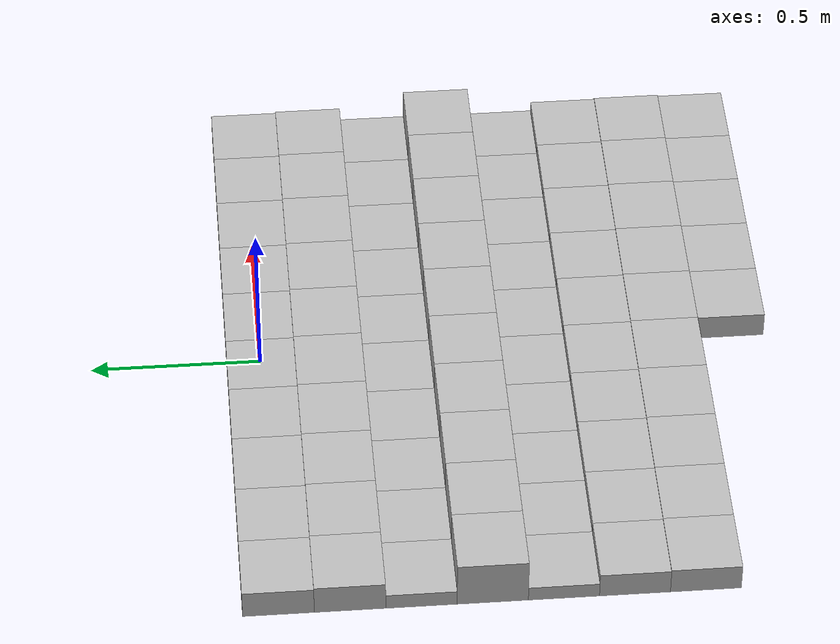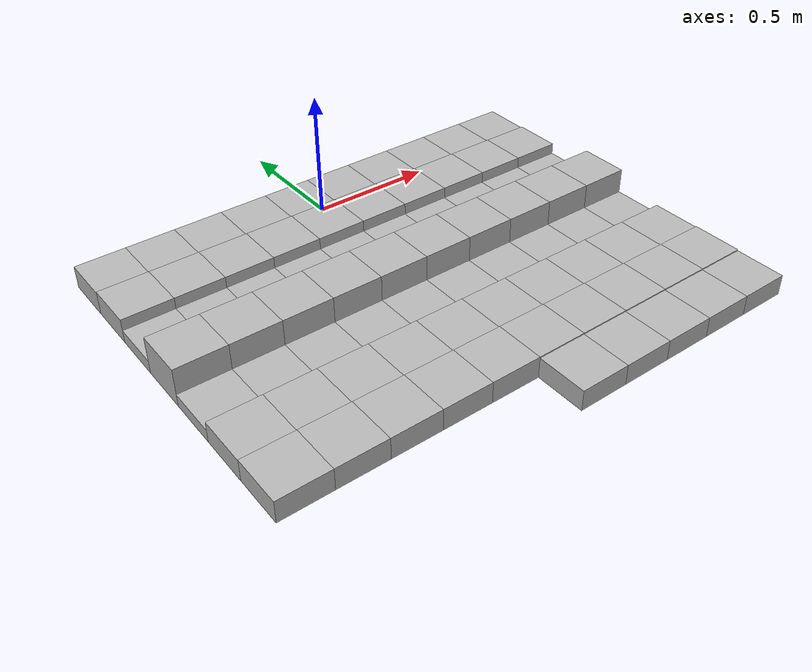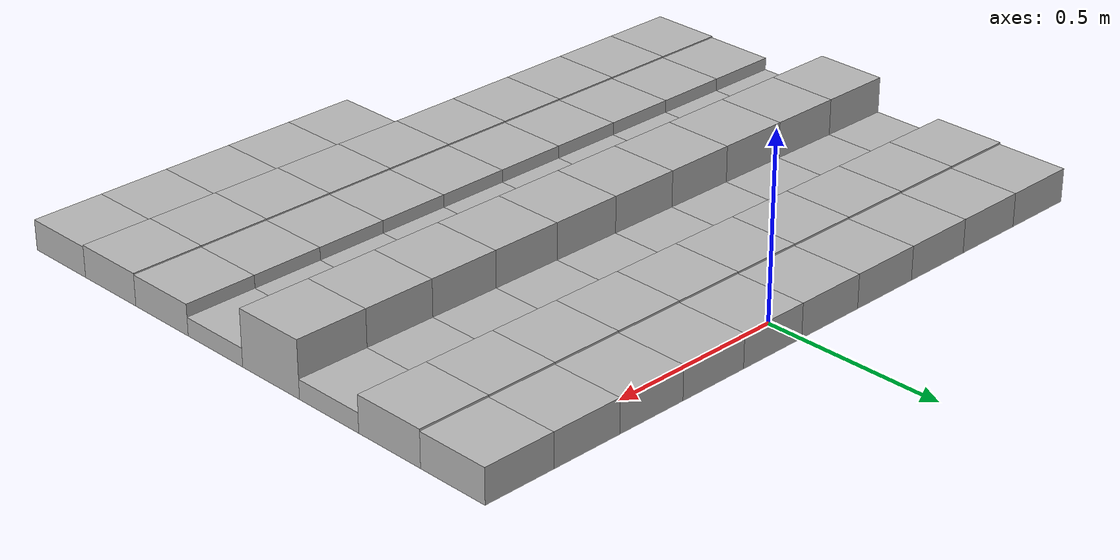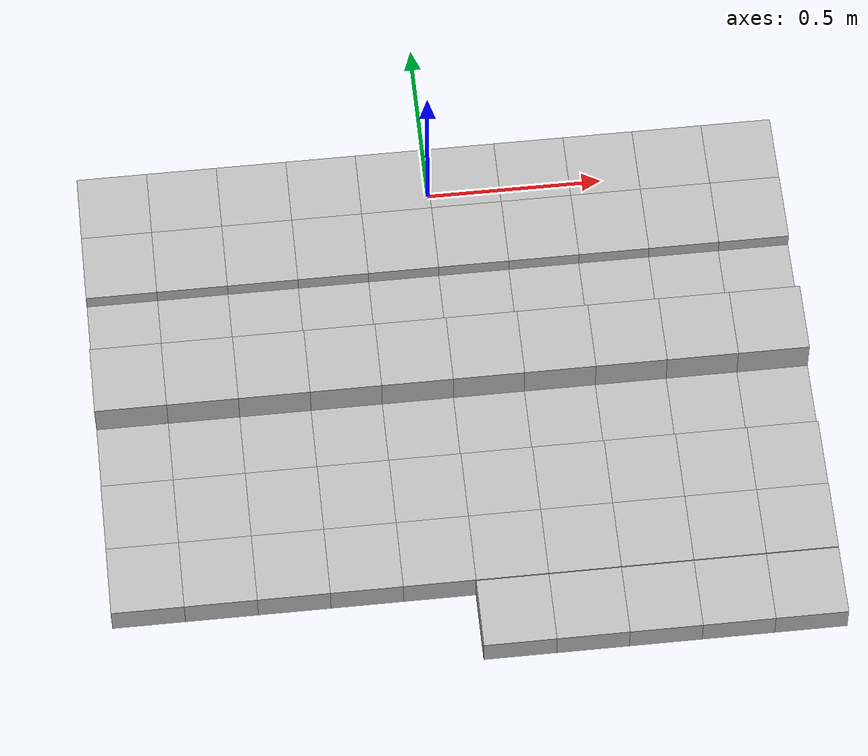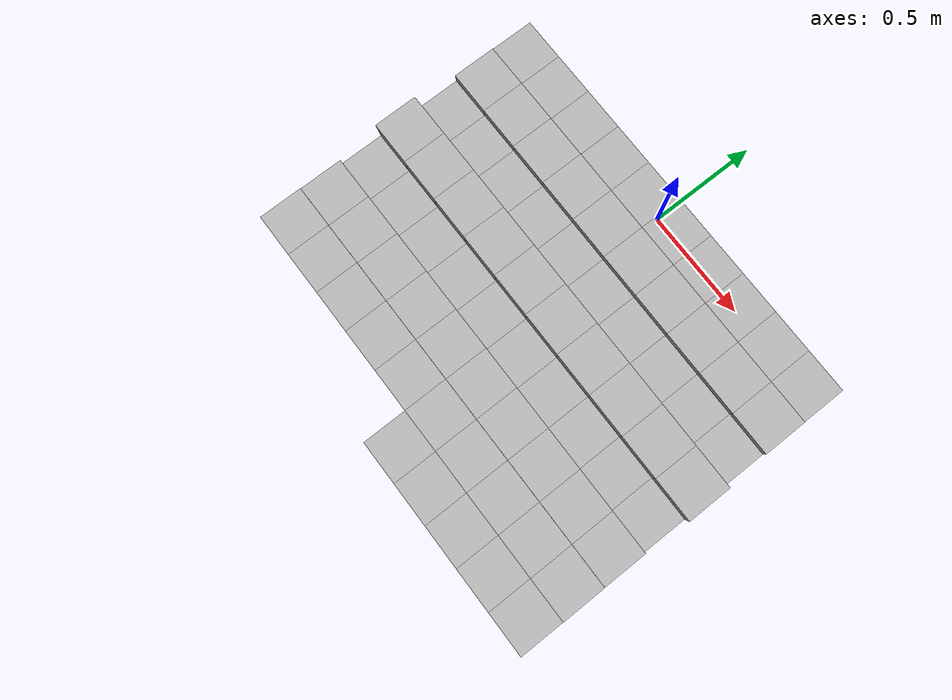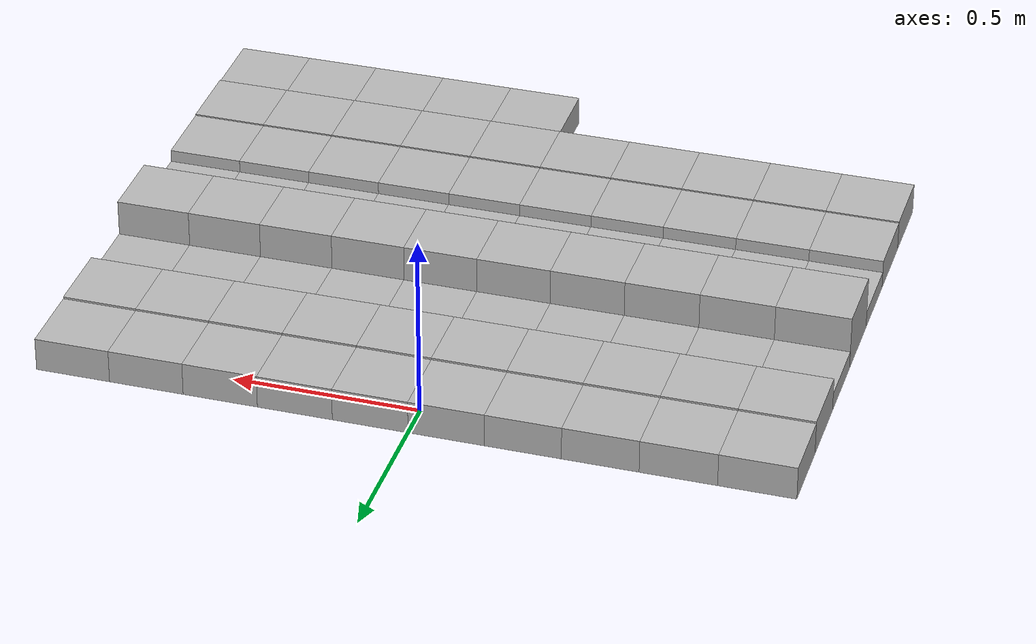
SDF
<sdf version="1.6">
 <model name="Terrain">
  <static>true</static>
  <link name="box_0_0">
   <pose>-0.9 0.0 0.0462607494483 0 0 0</pose>
   <inertial>
    <mass>1.0</mass>
    <inertia><ixx>0.0</ixx><ixy>0.0</ixy><ixz>0.0</ixz><iyy>0.0</iyy><iyz>0.0</iyz><izz>0.0</izz></inertia>
   </inertial>
   <collision name="collision"><geometry><box><size>0.2 0.2 0.0925214988967</size></box></geometry></collision>
   <visual name="visual"><geometry><box><size>0.2 0.2 0.0925214988967</size></box></geometry></visual>
  </link>
  <link name="box_0_1">
   <pose>-0.7 0.0 0.0462607494483 0 0 0</pose>
   <inertial>
    <mass>1.0</mass>
    <inertia><ixx>0.0</ixx><ixy>0.0</ixy><ixz>0.0</ixz><iyy>0.0</iyy><iyz>0.0</iyz><izz>0.0</izz></inertia>
   </inertial>
   <collision name="collision"><geometry><box><size>0.2 0.2 0.0925214988967</size></box></geometry></collision>
   <visual name="visual"><geometry><box><size>0.2 0.2 0.0925214988967</size></box></geometry></visual>
  </link>
  <link name="box_0_2">
   <pose>-0.5 0.0 0.0462607494483 0 0 0</pose>
   <inertial>
    <mass>1.0</mass>
    <inertia><ixx>0.0</ixx><ixy>0.0</ixy><ixz>0.0</ixz><iyy>0.0</iyy><iyz>0.0</iyz><izz>0.0</izz></inertia>
   </inertial>
   <collision name="collision"><geometry><box><size>0.2 0.2 0.0925214988967</size></box></geometry></collision>
   <visual name="visual"><geometry><box><size>0.2 0.2 0.0925214988967</size></box></geometry></visual>
  </link>
  <link name="box_0_3">
   <pose>-0.3 0.0 0.0462607494483 0 0 0</pose>
   <inertial>
    <mass>1.0</mass>
    <inertia><ixx>0.0</ixx><ixy>0.0</ixy><ixz>0.0</ixz><iyy>0.0</iyy><iyz>0.0</iyz><izz>0.0</izz></inertia>
   </inertial>
   <collision name="collision"><geometry><box><size>0.2 0.2 0.0925214988967</size></box></geometry></collision>
   <visual name="visual"><geometry><box><size>0.2 0.2 0.0925214988967</size></box></geometry></visual>
  </link>
  <link name="box_0_4">
   <pose>-0.1 0.0 0.0462607494483 0 0 0</pose>
   <inertial>
    <mass>1.0</mass>
    <inertia><ixx>0.0</ixx><ixy>0.0</ixy><ixz>0.0</ixz><iyy>0.0</iyy><iyz>0.0</iyz><izz>0.0</izz></inertia>
   </inertial>
   <collision name="collision"><geometry><box><size>0.2 0.2 0.0925214988967</size></box></geometry></collision>
   <visual name="visual"><geometry><box><size>0.2 0.2 0.0925214988967</size></box></geometry></visual>
  </link>
  <link name="box_0_5">
   <pose>0.1 0.0 0.0462607494483 0 0 0</pose>
   <inertial>
    <mass>1.0</mass>
    <inertia><ixx>0.0</ixx><ixy>0.0</ixy><ixz>0.0</ixz><iyy>0.0</iyy><iyz>0.0</iyz><izz>0.0</izz></inertia>
   </inertial>
   <collision name="collision"><geometry><box><size>0.2 0.2 0.0925214988967</size></box></geometry></collision>
   <visual name="visual"><geometry><box><size>0.2 0.2 0.0925214988967</size></box></geometry></visual>
  </link>
  <link name="box_0_6">
   <pose>0.3 0.0 0.0462607494483 0 0 0</pose>
   <inertial>
    <mass>1.0</mass>
    <inertia><ixx>0.0</ixx><ixy>0.0</ixy><ixz>0.0</ixz><iyy>0.0</iyy><iyz>0.0</iyz><izz>0.0</izz></inertia>
   </inertial>
   <collision name="collision"><geometry><box><size>0.2 0.2 0.0925214988967</size></box></geometry></collision>
   <visual name="visual"><geometry><box><size>0.2 0.2 0.0925214988967</size></box></geometry></visual>
  </link>
  <link name="box_0_7">
   <pose>0.5 0.0 0.0462607494483 0 0 0</pose>
   <inertial>
    <mass>1.0</mass>
    <inertia><ixx>0.0</ixx><ixy>0.0</ixy><ixz>0.0</ixz><iyy>0.0</iyy><iyz>0.0</iyz><izz>0.0</izz></inertia>
   </inertial>
   <collision name="collision"><geometry><box><size>0.2 0.2 0.0925214988967</size></box></geometry></collision>
   <visual name="visual"><geometry><box><size>0.2 0.2 0.0925214988967</size></box></geometry></visual>
  </link>
  <link name="box_0_8">
   <pose>0.7 0.0 0.0462607494483 0 0 0</pose>
   <inertial>
    <mass>1.0</mass>
    <inertia><ixx>0.0</ixx><ixy>0.0</ixy><ixz>0.0</ixz><iyy>0.0</iyy><iyz>0.0</iyz><izz>0.0</izz></inertia>
   </inertial>
   <collision name="collision"><geometry><box><size>0.2 0.2 0.0925214988967</size></box></geometry></collision>
   <visual name="visual"><geometry><box><size>0.2 0.2 0.0925214988967</size></box></geometry></visual>
  </link>
  <link name="box_0_9">
   <pose>0.9 0.0 0.0462607494483 0 0 0</pose>
   <inertial>
    <mass>1.0</mass>
    <inertia><ixx>0.0</ixx><ixy>0.0</ixy><ixz>0.0</ixz><iyy>0.0</iyy><iyz>0.0</iyz><izz>0.0</izz></inertia>
   </inertial>
   <collision name="collision"><geometry><box><size>0.2 0.2 0.0925214988967</size></box></geometry></collision>
   <visual name="visual"><geometry><box><size>0.2 0.2 0.0925214988967</size></box></geometry></visual>
  </link>
  <link name="box_1_0">
   <pose>-0.9 -0.2 0.0488480303083 0 0 0</pose>
   <inertial>
    <mass>1.0</mass>
    <inertia><ixx>0.0</ixx><ixy>0.0</ixy><ixz>0.0</ixz><iyy>0.0</iyy><iyz>0.0</iyz><izz>0.0</izz></inertia>
   </inertial>
   <collision name="collision"><geometry><box><size>0.2 0.2 0.0976960606167</size></box></geometry></collision>
   <visual name="visual"><geometry><box><size>0.2 0.2 0.0976960606167</size></box></geometry></visual>
  </link>
  <link name="box_1_1">
   <pose>-0.7 -0.2 0.0488480303083 0 0 0</pose>
   <inertial>
    <mass>1.0</mass>
    <inertia><ixx>0.0</ixx><ixy>0.0</ixy><ixz>0.0</ixz><iyy>0.0</iyy><iyz>0.0</iyz><izz>0.0</izz></inertia>
   </inertial>
   <collision name="collision"><geometry><box><size>0.2 0.2 0.0976960606167</size></box></geometry></collision>
   <visual name="visual"><geometry><box><size>0.2 0.2 0.0976960606167</size></box></geometry></visual>
  </link>
  <link name="box_1_2">
   <pose>-0.5 -0.2 0.0488480303083 0 0 0</pose>
   <inertial>
    <mass>1.0</mass>
    <inertia><ixx>0.0</ixx><ixy>0.0</ixy><ixz>0.0</ixz><iyy>0.0</iyy><iyz>0.0</iyz><izz>0.0</izz></inertia>
   </inertial>
   <collision name="collision"><geometry><box><size>0.2 0.2 0.0976960606167</size></box></geometry></collision>
   <visual name="visual"><geometry><box><size>0.2 0.2 0.0976960606167</size></box></geometry></visual>
  </link>
  <link name="box_1_3">
   <pose>-0.3 -0.2 0.0488480303083 0 0 0</pose>
   <inertial>
    <mass>1.0</mass>
    <inertia><ixx>0.0</ixx><ixy>0.0</ixy><ixz>0.0</ixz><iyy>0.0</iyy><iyz>0.0</iyz><izz>0.0</izz></inertia>
   </inertial>
   <collision name="collision"><geometry><box><size>0.2 0.2 0.0976960606167</size></box></geometry></collision>
   <visual name="visual"><geometry><box><size>0.2 0.2 0.0976960606167</size></box></geometry></visual>
  </link>
  <link name="box_1_4">
   <pose>-0.1 -0.2 0.0488480303083 0 0 0</pose>
   <inertial>
    <mass>1.0</mass>
    <inertia><ixx>0.0</ixx><ixy>0.0</ixy><ixz>0.0</ixz><iyy>0.0</iyy><iyz>0.0</iyz><izz>0.0</izz></inertia>
   </inertial>
   <collision name="collision"><geometry><box><size>0.2 0.2 0.0976960606167</size></box></geometry></collision>
   <visual name="visual"><geometry><box><size>0.2 0.2 0.0976960606167</size></box></geometry></visual>
  </link>
  <link name="box_1_5">
   <pose>0.1 -0.2 0.0488480303083 0 0 0</pose>
   <inertial>
    <mass>1.0</mass>
    <inertia><ixx>0.0</ixx><ixy>0.0</ixy><ixz>0.0</ixz><iyy>0.0</iyy><iyz>0.0</iyz><izz>0.0</izz></inertia>
   </inertial>
   <collision name="collision"><geometry><box><size>0.2 0.2 0.0976960606167</size></box></geometry></collision>
   <visual name="visual"><geometry><box><size>0.2 0.2 0.0976960606167</size></box></geometry></visual>
  </link>
  <link name="box_1_6">
   <pose>0.3 -0.2 0.0488480303083 0 0 0</pose>
   <inertial>
    <mass>1.0</mass>
    <inertia><ixx>0.0</ixx><ixy>0.0</ixy><ixz>0.0</ixz><iyy>0.0</iyy><iyz>0.0</iyz><izz>0.0</izz></inertia>
   </inertial>
   <collision name="collision"><geometry><box><size>0.2 0.2 0.0976960606167</size></box></geometry></collision>
   <visual name="visual"><geometry><box><size>0.2 0.2 0.0976960606167</size></box></geometry></visual>
  </link>
  <link name="box_1_7">
   <pose>0.5 -0.2 0.0488480303083 0 0 0</pose>
   <inertial>
    <mass>1.0</mass>
    <inertia><ixx>0.0</ixx><ixy>0.0</ixy><ixz>0.0</ixz><iyy>0.0</iyy><iyz>0.0</iyz><izz>0.0</izz></inertia>
   </inertial>
   <collision name="collision"><geometry><box><size>0.2 0.2 0.0976960606167</size></box></geometry></collision>
   <visual name="visual"><geometry><box><size>0.2 0.2 0.0976960606167</size></box></geometry></visual>
  </link>
  <link name="box_1_8">
   <pose>0.7 -0.2 0.0488480303083 0 0 0</pose>
   <inertial>
    <mass>1.0</mass>
    <inertia><ixx>0.0</ixx><ixy>0.0</ixy><ixz>0.0</ixz><iyy>0.0</iyy><iyz>0.0</iyz><izz>0.0</izz></inertia>
   </inertial>
   <collision name="collision"><geometry><box><size>0.2 0.2 0.0976960606167</size></box></geometry></collision>
   <visual name="visual"><geometry><box><size>0.2 0.2 0.0976960606167</size></box></geometry></visual>
  </link>
  <link name="box_1_9">
   <pose>0.9 -0.2 0.0488480303083 0 0 0</pose>
   <inertial>
    <mass>1.0</mass>
    <inertia><ixx>0.0</ixx><ixy>0.0</ixy><ixz>0.0</ixz><iyy>0.0</iyy><iyz>0.0</iyz><izz>0.0</izz></inertia>
   </inertial>
   <collision name="collision"><geometry><box><size>0.2 0.2 0.0976960606167</size></box></geometry></collision>
   <visual name="visual"><geometry><box><size>0.2 0.2 0.0976960606167</size></box></geometry></visual>
  </link>
  <link name="box_2_0">
   <pose>-0.9 -0.4 0.0259104339983 0 0 0</pose>
   <inertial>
    <mass>1.0</mass>
    <inertia><ixx>0.0</ixx><ixy>0.0</ixy><ixz>0.0</ixz><iyy>0.0</iyy><iyz>0.0</iyz><izz>0.0</izz></inertia>
   </inertial>
   <collision name="collision"><geometry><box><size>0.2 0.2 0.0518208679965</size></box></geometry></collision>
   <visual name="visual"><geometry><box><size>0.2 0.2 0.0518208679965</size></box></geometry></visual>
  </link>
  <link name="box_2_1">
   <pose>-0.7 -0.4 0.0259104339983 0 0 0</pose>
   <inertial>
    <mass>1.0</mass>
    <inertia><ixx>0.0</ixx><ixy>0.0</ixy><ixz>0.0</ixz><iyy>0.0</iyy><iyz>0.0</iyz><izz>0.0</izz></inertia>
   </inertial>
   <collision name="collision"><geometry><box><size>0.2 0.2 0.0518208679965</size></box></geometry></collision>
   <visual name="visual"><geometry><box><size>0.2 0.2 0.0518208679965</size></box></geometry></visual>
  </link>
  <link name="box_2_2">
   <pose>-0.5 -0.4 0.0259104339983 0 0 0</pose>
   <inertial>
    <mass>1.0</mass>
    <inertia><ixx>0.0</ixx><ixy>0.0</ixy><ixz>0.0</ixz><iyy>0.0</iyy><iyz>0.0</iyz><izz>0.0</izz></inertia>
   </inertial>
   <collision name="collision"><geometry><box><size>0.2 0.2 0.0518208679965</size></box></geometry></collision>
   <visual name="visual"><geometry><box><size>0.2 0.2 0.0518208679965</size></box></geometry></visual>
  </link>
  <link name="box_2_3">
   <pose>-0.3 -0.4 0.0259104339983 0 0 0</pose>
   <inertial>
    <mass>1.0</mass>
    <inertia><ixx>0.0</ixx><ixy>0.0</ixy><ixz>0.0</ixz><iyy>0.0</iyy><iyz>0.0</iyz><izz>0.0</izz></inertia>
   </inertial>
   <collision name="collision"><geometry><box><size>0.2 0.2 0.0518208679965</size></box></geometry></collision>
   <visual name="visual"><geometry><box><size>0.2 0.2 0.0518208679965</size></box></geometry></visual>
  </link>
  <link name="box_2_4">
   <pose>-0.1 -0.4 0.0259104339983 0 0 0</pose>
   <inertial>
    <mass>1.0</mass>
    <inertia><ixx>0.0</ixx><ixy>0.0</ixy><ixz>0.0</ixz><iyy>0.0</iyy><iyz>0.0</iyz><izz>0.0</izz></inertia>
   </inertial>
   <collision name="collision"><geometry><box><size>0.2 0.2 0.0518208679965</size></box></geometry></collision>
   <visual name="visual"><geometry><box><size>0.2 0.2 0.0518208679965</size></box></geometry></visual>
  </link>
  <link name="box_2_5">
   <pose>0.1 -0.4 0.0259104339983 0 0 0</pose>
   <inertial>
    <mass>1.0</mass>
    <inertia><ixx>0.0</ixx><ixy>0.0</ixy><ixz>0.0</ixz><iyy>0.0</iyy><iyz>0.0</iyz><izz>0.0</izz></inertia>
   </inertial>
   <collision name="collision"><geometry><box><size>0.2 0.2 0.0518208679965</size></box></geometry></collision>
   <visual name="visual"><geometry><box><size>0.2 0.2 0.0518208679965</size></box></geometry></visual>
  </link>
  <link name="box_2_6">
   <pose>0.3 -0.4 0.0259104339983 0 0 0</pose>
   <inertial>
    <mass>1.0</mass>
    <inertia><ixx>0.0</ixx><ixy>0.0</ixy><ixz>0.0</ixz><iyy>0.0</iyy><iyz>0.0</iyz><izz>0.0</izz></inertia>
   </inertial>
   <collision name="collision"><geometry><box><size>0.2 0.2 0.0518208679965</size></box></geometry></collision>
   <visual name="visual"><geometry><box><size>0.2 0.2 0.0518208679965</size></box></geometry></visual>
  </link>
  <link name="box_2_7">
   <pose>0.5 -0.4 0.0259104339983 0 0 0</pose>
   <inertial>
    <mass>1.0</mass>
    <inertia><ixx>0.0</ixx><ixy>0.0</ixy><ixz>0.0</ixz><iyy>0.0</iyy><iyz>0.0</iyz><izz>0.0</izz></inertia>
   </inertial>
   <collision name="collision"><geometry><box><size>0.2 0.2 0.0518208679965</size></box></geometry></collision>
   <visual name="visual"><geometry><box><size>0.2 0.2 0.0518208679965</size></box></geometry></visual>
  </link>
  <link name="box_2_8">
   <pose>0.7 -0.4 0.0259104339983 0 0 0</pose>
   <inertial>
    <mass>1.0</mass>
    <inertia><ixx>0.0</ixx><ixy>0.0</ixy><ixz>0.0</ixz><iyy>0.0</iyy><iyz>0.0</iyz><izz>0.0</izz></inertia>
   </inertial>
   <collision name="collision"><geometry><box><size>0.2 0.2 0.0518208679965</size></box></geometry></collision>
   <visual name="visual"><geometry><box><size>0.2 0.2 0.0518208679965</size></box></geometry></visual>
  </link>
  <link name="box_2_9">
   <pose>0.9 -0.4 0.0259104339983 0 0 0</pose>
   <inertial>
    <mass>1.0</mass>
    <inertia><ixx>0.0</ixx><ixy>0.0</ixy><ixz>0.0</ixz><iyy>0.0</iyy><iyz>0.0</iyz><izz>0.0</izz></inertia>
   </inertial>
   <collision name="collision"><geometry><box><size>0.2 0.2 0.0518208679965</size></box></geometry></collision>
   <visual name="visual"><geometry><box><size>0.2 0.2 0.0518208679965</size></box></geometry></visual>
  </link>
  <link name="box_3_0">
   <pose>-0.9 -0.6 0.0759818154219 0 0 0</pose>
   <inertial>
    <mass>1.0</mass>
    <inertia><ixx>0.0</ixx><ixy>0.0</ixy><ixz>0.0</ixz><iyy>0.0</iyy><iyz>0.0</iyz><izz>0.0</izz></inertia>
   </inertial>
   <collision name="collision"><geometry><box><size>0.2 0.2 0.151963630844</size></box></geometry></collision>
   <visual name="visual"><geometry><box><size>0.2 0.2 0.151963630844</size></box></geometry></visual>
  </link>
  <link name="box_3_1">
   <pose>-0.7 -0.6 0.0759818154219 0 0 0</pose>
   <inertial>
    <mass>1.0</mass>
    <inertia><ixx>0.0</ixx><ixy>0.0</ixy><ixz>0.0</ixz><iyy>0.0</iyy><iyz>0.0</iyz><izz>0.0</izz></inertia>
   </inertial>
   <collision name="collision"><geometry><box><size>0.2 0.2 0.151963630844</size></box></geometry></collision>
   <visual name="visual"><geometry><box><size>0.2 0.2 0.151963630844</size></box></geometry></visual>
  </link>
  <link name="box_3_2">
   <pose>-0.5 -0.6 0.0759818154219 0 0 0</pose>
   <inertial>
    <mass>1.0</mass>
    <inertia><ixx>0.0</ixx><ixy>0.0</ixy><ixz>0.0</ixz><iyy>0.0</iyy><iyz>0.0</iyz><izz>0.0</izz></inertia>
   </inertial>
   <collision name="collision"><geometry><box><size>0.2 0.2 0.151963630844</size></box></geometry></collision>
   <visual name="visual"><geometry><box><size>0.2 0.2 0.151963630844</size></box></geometry></visual>
  </link>
  <link name="box_3_3">
   <pose>-0.3 -0.6 0.0759818154219 0 0 0</pose>
   <inertial>
    <mass>1.0</mass>
    <inertia><ixx>0.0</ixx><ixy>0.0</ixy><ixz>0.0</ixz><iyy>0.0</iyy><iyz>0.0</iyz><izz>0.0</izz></inertia>
   </inertial>
   <collision name="collision"><geometry><box><size>0.2 0.2 0.151963630844</size></box></geometry></collision>
   <visual name="visual"><geometry><box><size>0.2 0.2 0.151963630844</size></box></geometry></visual>
  </link>
  <link name="box_3_4">
   <pose>-0.1 -0.6 0.0759818154219 0 0 0</pose>
   <inertial>
    <mass>1.0</mass>
    <inertia><ixx>0.0</ixx><ixy>0.0</ixy><ixz>0.0</ixz><iyy>0.0</iyy><iyz>0.0</iyz><izz>0.0</izz></inertia>
   </inertial>
   <collision name="collision"><geometry><box><size>0.2 0.2 0.151963630844</size></box></geometry></collision>
   <visual name="visual"><geometry><box><size>0.2 0.2 0.151963630844</size></box></geometry></visual>
  </link>
  <link name="box_3_5">
   <pose>0.1 -0.6 0.0759818154219 0 0 0</pose>
   <inertial>
    <mass>1.0</mass>
    <inertia><ixx>0.0</ixx><ixy>0.0</ixy><ixz>0.0</ixz><iyy>0.0</iyy><iyz>0.0</iyz><izz>0.0</izz></inertia>
   </inertial>
   <collision name="collision"><geometry><box><size>0.2 0.2 0.151963630844</size></box></geometry></collision>
   <visual name="visual"><geometry><box><size>0.2 0.2 0.151963630844</size></box></geometry></visual>
  </link>
  <link name="box_3_6">
   <pose>0.3 -0.6 0.0759818154219 0 0 0</pose>
   <inertial>
    <mass>1.0</mass>
    <inertia><ixx>0.0</ixx><ixy>0.0</ixy><ixz>0.0</ixz><iyy>0.0</iyy><iyz>0.0</iyz><izz>0.0</izz></inertia>
   </inertial>
   <collision name="collision"><geometry><box><size>0.2 0.2 0.151963630844</size></box></geometry></collision>
   <visual name="visual"><geometry><box><size>0.2 0.2 0.151963630844</size></box></geometry></visual>
  </link>
  <link name="box_3_7">
   <pose>0.5 -0.6 0.0759818154219 0 0 0</pose>
   <inertial>
    <mass>1.0</mass>
    <inertia><ixx>0.0</ixx><ixy>0.0</ixy><ixz>0.0</ixz><iyy>0.0</iyy><iyz>0.0</iyz><izz>0.0</izz></inertia>
   </inertial>
   <collision name="collision"><geometry><box><size>0.2 0.2 0.151963630844</size></box></geometry></collision>
   <visual name="visual"><geometry><box><size>0.2 0.2 0.151963630844</size></box></geometry></visual>
  </link>
  <link name="box_3_8">
   <pose>0.7 -0.6 0.0759818154219 0 0 0</pose>
   <inertial>
    <mass>1.0</mass>
    <inertia><ixx>0.0</ixx><ixy>0.0</ixy><ixz>0.0</ixz><iyy>0.0</iyy><iyz>0.0</iyz><izz>0.0</izz></inertia>
   </inertial>
   <collision name="collision"><geometry><box><size>0.2 0.2 0.151963630844</size></box></geometry></collision>
   <visual name="visual"><geometry><box><size>0.2 0.2 0.151963630844</size></box></geometry></visual>
  </link>
  <link name="box_3_9">
   <pose>0.9 -0.6 0.0759818154219 0 0 0</pose>
   <inertial>
    <mass>1.0</mass>
    <inertia><ixx>0.0</ixx><ixy>0.0</ixy><ixz>0.0</ixz><iyy>0.0</iyy><iyz>0.0</iyz><izz>0.0</izz></inertia>
   </inertial>
   <collision name="collision"><geometry><box><size>0.2 0.2 0.151963630844</size></box></geometry></collision>
   <visual name="visual"><geometry><box><size>0.2 0.2 0.151963630844</size></box></geometry></visual>
  </link>
  <link name="box_4_0">
   <pose>-0.9 -0.8 0.0246215216488 0 0 0</pose>
   <inertial>
    <mass>1.0</mass>
    <inertia><ixx>0.0</ixx><ixy>0.0</ixy><ixz>0.0</ixz><iyy>0.0</iyy><iyz>0.0</iyz><izz>0.0</izz></inertia>
   </inertial>
   <collision name="collision"><geometry><box><size>0.2 0.2 0.0492430432977</size></box></geometry></collision>
   <visual name="visual"><geometry><box><size>0.2 0.2 0.0492430432977</size></box></geometry></visual>
  </link>
  <link name="box_4_1">
   <pose>-0.7 -0.8 0.0246215216488 0 0 0</pose>
   <inertial>
    <mass>1.0</mass>
    <inertia><ixx>0.0</ixx><ixy>0.0</ixy><ixz>0.0</ixz><iyy>0.0</iyy><iyz>0.0</iyz><izz>0.0</izz></inertia>
   </inertial>
   <collision name="collision"><geometry><box><size>0.2 0.2 0.0492430432977</size></box></geometry></collision>
   <visual name="visual"><geometry><box><size>0.2 0.2 0.0492430432977</size></box></geometry></visual>
  </link>
  <link name="box_4_2">
   <pose>-0.5 -0.8 0.0246215216488 0 0 0</pose>
   <inertial>
    <mass>1.0</mass>
    <inertia><ixx>0.0</ixx><ixy>0.0</ixy><ixz>0.0</ixz><iyy>0.0</iyy><iyz>0.0</iyz><izz>0.0</izz></inertia>
   </inertial>
   <collision name="collision"><geometry><box><size>0.2 0.2 0.0492430432977</size></box></geometry></collision>
   <visual name="visual"><geometry><box><size>0.2 0.2 0.0492430432977</size></box></geometry></visual>
  </link>
  <link name="box_4_3">
   <pose>-0.3 -0.8 0.0246215216488 0 0 0</pose>
   <inertial>
    <mass>1.0</mass>
    <inertia><ixx>0.0</ixx><ixy>0.0</ixy><ixz>0.0</ixz><iyy>0.0</iyy><iyz>0.0</iyz><izz>0.0</izz></inertia>
   </inertial>
   <collision name="collision"><geometry><box><size>0.2 0.2 0.0492430432977</size></box></geometry></collision>
   <visual name="visual"><geometry><box><size>0.2 0.2 0.0492430432977</size></box></geometry></visual>
  </link>
  <link name="box_4_4">
   <pose>-0.1 -0.8 0.0246215216488 0 0 0</pose>
   <inertial>
    <mass>1.0</mass>
    <inertia><ixx>0.0</ixx><ixy>0.0</ixy><ixz>0.0</ixz><iyy>0.0</iyy><iyz>0.0</iyz><izz>0.0</izz></inertia>
   </inertial>
   <collision name="collision"><geometry><box><size>0.2 0.2 0.0492430432977</size></box></geometry></collision>
   <visual name="visual"><geometry><box><size>0.2 0.2 0.0492430432977</size></box></geometry></visual>
  </link>
  <link name="box_4_5">
   <pose>0.1 -0.8 0.0246215216488 0 0 0</pose>
   <inertial>
    <mass>1.0</mass>
    <inertia><ixx>0.0</ixx><ixy>0.0</ixy><ixz>0.0</ixz><iyy>0.0</iyy><iyz>0.0</iyz><izz>0.0</izz></inertia>
   </inertial>
   <collision name="collision"><geometry><box><size>0.2 0.2 0.0492430432977</size></box></geometry></collision>
   <visual name="visual"><geometry><box><size>0.2 0.2 0.0492430432977</size></box></geometry></visual>
  </link>
  <link name="box_4_6">
   <pose>0.3 -0.8 0.0246215216488 0 0 0</pose>
   <inertial>
    <mass>1.0</mass>
    <inertia><ixx>0.0</ixx><ixy>0.0</ixy><ixz>0.0</ixz><iyy>0.0</iyy><iyz>0.0</iyz><izz>0.0</izz></inertia>
   </inertial>
   <collision name="collision"><geometry><box><size>0.2 0.2 0.0492430432977</size></box></geometry></collision>
   <visual name="visual"><geometry><box><size>0.2 0.2 0.0492430432977</size></box></geometry></visual>
  </link>
  <link name="box_4_7">
   <pose>0.5 -0.8 0.0246215216488 0 0 0</pose>
   <inertial>
    <mass>1.0</mass>
    <inertia><ixx>0.0</ixx><ixy>0.0</ixy><ixz>0.0</ixz><iyy>0.0</iyy><iyz>0.0</iyz><izz>0.0</izz></inertia>
   </inertial>
   <collision name="collision"><geometry><box><size>0.2 0.2 0.0492430432977</size></box></geometry></collision>
   <visual name="visual"><geometry><box><size>0.2 0.2 0.0492430432977</size></box></geometry></visual>
  </link>
  <link name="box_4_8">
   <pose>0.7 -0.8 0.0246215216488 0 0 0</pose>
   <inertial>
    <mass>1.0</mass>
    <inertia><ixx>0.0</ixx><ixy>0.0</ixy><ixz>0.0</ixz><iyy>0.0</iyy><iyz>0.0</iyz><izz>0.0</izz></inertia>
   </inertial>
   <collision name="collision"><geometry><box><size>0.2 0.2 0.0492430432977</size></box></geometry></collision>
   <visual name="visual"><geometry><box><size>0.2 0.2 0.0492430432977</size></box></geometry></visual>
  </link>
  <link name="box_4_9">
   <pose>0.9 -0.8 0.0246215216488 0 0 0</pose>
   <inertial>
    <mass>1.0</mass>
    <inertia><ixx>0.0</ixx><ixy>0.0</ixy><ixz>0.0</ixz><iyy>0.0</iyy><iyz>0.0</iyz><izz>0.0</izz></inertia>
   </inertial>
   <collision name="collision"><geometry><box><size>0.2 0.2 0.0492430432977</size></box></geometry></collision>
   <visual name="visual"><geometry><box><size>0.2 0.2 0.0492430432977</size></box></geometry></visual>
  </link>
  <link name="box_5_0">
   <pose>-0.9 -1.0 0.0418276035289 0 0 0</pose>
   <inertial>
    <mass>1.0</mass>
    <inertia><ixx>0.0</ixx><ixy>0.0</ixy><ixz>0.0</ixz><iyy>0.0</iyy><iyz>0.0</iyz><izz>0.0</izz></inertia>
   </inertial>
   <collision name="collision"><geometry><box><size>0.2 0.2 0.0836552070578</size></box></geometry></collision>
   <visual name="visual"><geometry><box><size>0.2 0.2 0.0836552070578</size></box></geometry></visual>
  </link>
  <link name="box_5_1">
   <pose>-0.7 -1.0 0.0418276035289 0 0 0</pose>
   <inertial>
    <mass>1.0</mass>
    <inertia><ixx>0.0</ixx><ixy>0.0</ixy><ixz>0.0</ixz><iyy>0.0</iyy><iyz>0.0</iyz><izz>0.0</izz></inertia>
   </inertial>
   <collision name="collision"><geometry><box><size>0.2 0.2 0.0836552070578</size></box></geometry></collision>
   <visual name="visual"><geometry><box><size>0.2 0.2 0.0836552070578</size></box></geometry></visual>
  </link>
  <link name="box_5_2">
   <pose>-0.5 -1.0 0.0418276035289 0 0 0</pose>
   <inertial>
    <mass>1.0</mass>
    <inertia><ixx>0.0</ixx><ixy>0.0</ixy><ixz>0.0</ixz><iyy>0.0</iyy><iyz>0.0</iyz><izz>0.0</izz></inertia>
   </inertial>
   <collision name="collision"><geometry><box><size>0.2 0.2 0.0836552070578</size></box></geometry></collision>
   <visual name="visual"><geometry><box><size>0.2 0.2 0.0836552070578</size></box></geometry></visual>
  </link>
  <link name="box_5_3">
   <pose>-0.3 -1.0 0.0418276035289 0 0 0</pose>
   <inertial>
    <mass>1.0</mass>
    <inertia><ixx>0.0</ixx><ixy>0.0</ixy><ixz>0.0</ixz><iyy>0.0</iyy><iyz>0.0</iyz><izz>0.0</izz></inertia>
   </inertial>
   <collision name="collision"><geometry><box><size>0.2 0.2 0.0836552070578</size></box></geometry></collision>
   <visual name="visual"><geometry><box><size>0.2 0.2 0.0836552070578</size></box></geometry></visual>
  </link>
  <link name="box_5_4">
   <pose>-0.1 -1.0 0.0418276035289 0 0 0</pose>
   <inertial>
    <mass>1.0</mass>
    <inertia><ixx>0.0</ixx><ixy>0.0</ixy><ixz>0.0</ixz><iyy>0.0</iyy><iyz>0.0</iyz><izz>0.0</izz></inertia>
   </inertial>
   <collision name="collision"><geometry><box><size>0.2 0.2 0.0836552070578</size></box></geometry></collision>
   <visual name="visual"><geometry><box><size>0.2 0.2 0.0836552070578</size></box></geometry></visual>
  </link>
  <link name="box_5_5">
   <pose>0.1 -1.0 0.0418276035289 0 0 0</pose>
   <inertial>
    <mass>1.0</mass>
    <inertia><ixx>0.0</ixx><ixy>0.0</ixy><ixz>0.0</ixz><iyy>0.0</iyy><iyz>0.0</iyz><izz>0.0</izz></inertia>
   </inertial>
   <collision name="collision"><geometry><box><size>0.2 0.2 0.0836552070578</size></box></geometry></collision>
   <visual name="visual"><geometry><box><size>0.2 0.2 0.0836552070578</size></box></geometry></visual>
  </link>
  <link name="box_5_6">
   <pose>0.3 -1.0 0.0418276035289 0 0 0</pose>
   <inertial>
    <mass>1.0</mass>
    <inertia><ixx>0.0</ixx><ixy>0.0</ixy><ixz>0.0</ixz><iyy>0.0</iyy><iyz>0.0</iyz><izz>0.0</izz></inertia>
   </inertial>
   <collision name="collision"><geometry><box><size>0.2 0.2 0.0836552070578</size></box></geometry></collision>
   <visual name="visual"><geometry><box><size>0.2 0.2 0.0836552070578</size></box></geometry></visual>
  </link>
  <link name="box_5_7">
   <pose>0.5 -1.0 0.0418276035289 0 0 0</pose>
   <inertial>
    <mass>1.0</mass>
    <inertia><ixx>0.0</ixx><ixy>0.0</ixy><ixz>0.0</ixz><iyy>0.0</iyy><iyz>0.0</iyz><izz>0.0</izz></inertia>
   </inertial>
   <collision name="collision"><geometry><box><size>0.2 0.2 0.0836552070578</size></box></geometry></collision>
   <visual name="visual"><geometry><box><size>0.2 0.2 0.0836552070578</size></box></geometry></visual>
  </link>
  <link name="box_5_8">
   <pose>0.7 -1.0 0.0418276035289 0 0 0</pose>
   <inertial>
    <mass>1.0</mass>
    <inertia><ixx>0.0</ixx><ixy>0.0</ixy><ixz>0.0</ixz><iyy>0.0</iyy><iyz>0.0</iyz><izz>0.0</izz></inertia>
   </inertial>
   <collision name="collision"><geometry><box><size>0.2 0.2 0.0836552070578</size></box></geometry></collision>
   <visual name="visual"><geometry><box><size>0.2 0.2 0.0836552070578</size></box></geometry></visual>
  </link>
  <link name="box_5_9">
   <pose>0.9 -1.0 0.0418276035289 0 0 0</pose>
   <inertial>
    <mass>1.0</mass>
    <inertia><ixx>0.0</ixx><ixy>0.0</ixy><ixz>0.0</ixz><iyy>0.0</iyy><iyz>0.0</iyz><izz>0.0</izz></inertia>
   </inertial>
   <collision name="collision"><geometry><box><size>0.2 0.2 0.0836552070578</size></box></geometry></collision>
   <visual name="visual"><geometry><box><size>0.2 0.2 0.0836552070578</size></box></geometry></visual>
  </link>
  <link name="box_6_0">
   <pose>-0.9 -1.2 0.0436936428883 0 0 0</pose>
   <inertial>
    <mass>1.0</mass>
    <inertia><ixx>0.0</ixx><ixy>0.0</ixy><ixz>0.0</ixz><iyy>0.0</iyy><iyz>0.0</iyz><izz>0.0</izz></inertia>
   </inertial>
   <collision name="collision"><geometry><box><size>0.2 0.2 0.0873872857766</size></box></geometry></collision>
   <visual name="visual"><geometry><box><size>0.2 0.2 0.0873872857766</size></box></geometry></visual>
  </link>
  <link name="box_6_1">
   <pose>-0.7 -1.2 0.0436936428883 0 0 0</pose>
   <inertial>
    <mass>1.0</mass>
    <inertia><ixx>0.0</ixx><ixy>0.0</ixy><ixz>0.0</ixz><iyy>0.0</iyy><iyz>0.0</iyz><izz>0.0</izz></inertia>
   </inertial>
   <collision name="collision"><geometry><box><size>0.2 0.2 0.0873872857766</size></box></geometry></collision>
   <visual name="visual"><geometry><box><size>0.2 0.2 0.0873872857766</size></box></geometry></visual>
  </link>
  <link name="box_6_2">
   <pose>-0.5 -1.2 0.0436936428883 0 0 0</pose>
   <inertial>
    <mass>1.0</mass>
    <inertia><ixx>0.0</ixx><ixy>0.0</ixy><ixz>0.0</ixz><iyy>0.0</iyy><iyz>0.0</iyz><izz>0.0</izz></inertia>
   </inertial>
   <collision name="collision"><geometry><box><size>0.2 0.2 0.0873872857766</size></box></geometry></collision>
   <visual name="visual"><geometry><box><size>0.2 0.2 0.0873872857766</size></box></geometry></visual>
  </link>
  <link name="box_6_3">
   <pose>-0.3 -1.2 0.0436936428883 0 0 0</pose>
   <inertial>
    <mass>1.0</mass>
    <inertia><ixx>0.0</ixx><ixy>0.0</ixy><ixz>0.0</ixz><iyy>0.0</iyy><iyz>0.0</iyz><izz>0.0</izz></inertia>
   </inertial>
   <collision name="collision"><geometry><box><size>0.2 0.2 0.0873872857766</size></box></geometry></collision>
   <visual name="visual"><geometry><box><size>0.2 0.2 0.0873872857766</size></box></geometry></visual>
  </link>
  <link name="box_6_4">
   <pose>-0.1 -1.2 0.0436936428883 0 0 0</pose>
   <inertial>
    <mass>1.0</mass>
    <inertia><ixx>0.0</ixx><ixy>0.0</ixy><ixz>0.0</ixz><iyy>0.0</iyy><iyz>0.0</iyz><izz>0.0</izz></inertia>
   </inertial>
   <collision name="collision"><geometry><box><size>0.2 0.2 0.0873872857766</size></box></geometry></collision>
   <visual name="visual"><geometry><box><size>0.2 0.2 0.0873872857766</size></box></geometry></visual>
  </link>
  <link name="box_6_5">
   <pose>0.1 -1.2 0.0436936428883 0 0 0</pose>
   <inertial>
    <mass>1.0</mass>
    <inertia><ixx>0.0</ixx><ixy>0.0</ixy><ixz>0.0</ixz><iyy>0.0</iyy><iyz>0.0</iyz><izz>0.0</izz></inertia>
   </inertial>
   <collision name="collision"><geometry><box><size>0.2 0.2 0.0873872857766</size></box></geometry></collision>
   <visual name="visual"><geometry><box><size>0.2 0.2 0.0873872857766</size></box></geometry></visual>
  </link>
  <link name="box_6_6">
   <pose>0.3 -1.2 0.0436936428883 0 0 0</pose>
   <inertial>
    <mass>1.0</mass>
    <inertia><ixx>0.0</ixx><ixy>0.0</ixy><ixz>0.0</ixz><iyy>0.0</iyy><iyz>0.0</iyz><izz>0.0</izz></inertia>
   </inertial>
   <collision name="collision"><geometry><box><size>0.2 0.2 0.0873872857766</size></box></geometry></collision>
   <visual name="visual"><geometry><box><size>0.2 0.2 0.0873872857766</size></box></geometry></visual>
  </link>
  <link name="box_6_7">
   <pose>0.5 -1.2 0.0436936428883 0 0 0</pose>
   <inertial>
    <mass>1.0</mass>
    <inertia><ixx>0.0</ixx><ixy>0.0</ixy><ixz>0.0</ixz><iyy>0.0</iyy><iyz>0.0</iyz><izz>0.0</izz></inertia>
   </inertial>
   <collision name="collision"><geometry><box><size>0.2 0.2 0.0873872857766</size></box></geometry></collision>
   <visual name="visual"><geometry><box><size>0.2 0.2 0.0873872857766</size></box></geometry></visual>
  </link>
  <link name="box_6_8">
   <pose>0.7 -1.2 0.0436936428883 0 0 0</pose>
   <inertial>
    <mass>1.0</mass>
    <inertia><ixx>0.0</ixx><ixy>0.0</ixy><ixz>0.0</ixz><iyy>0.0</iyy><iyz>0.0</iyz><izz>0.0</izz></inertia>
   </inertial>
   <collision name="collision"><geometry><box><size>0.2 0.2 0.0873872857766</size></box></geometry></collision>
   <visual name="visual"><geometry><box><size>0.2 0.2 0.0873872857766</size></box></geometry></visual>
  </link>
  <link name="box_6_9">
   <pose>0.9 -1.2 0.0436936428883 0 0 0</pose>
   <inertial>
    <mass>1.0</mass>
    <inertia><ixx>0.0</ixx><ixy>0.0</ixy><ixz>0.0</ixz><iyy>0.0</iyy><iyz>0.0</iyz><izz>0.0</izz></inertia>
   </inertial>
   <collision name="collision"><geometry><box><size>0.2 0.2 0.0873872857766</size></box></geometry></collision>
   <visual name="visual"><geometry><box><size>0.2 0.2 0.0873872857766</size></box></geometry></visual>
  </link>
  <link name="box_7_5">
   <pose>0.1 -1.4 0.0414002661977 0 0 0</pose>
   <inertial>
    <mass>1.0</mass>
    <inertia><ixx>0.0</ixx><ixy>0.0</ixy><ixz>0.0</ixz><iyy>0.0</iyy><iyz>0.0</iyz><izz>0.0</izz></inertia>
   </inertial>
   <collision name="collision"><geometry><box><size>0.2 0.2 0.0828005323954</size></box></geometry></collision>
   <visual name="visual"><geometry><box><size>0.2 0.2 0.0828005323954</size></box></geometry></visual>
  </link>
  <link name="box_7_6">
   <pose>0.3 -1.4 0.0414002661977 0 0 0</pose>
   <inertial>
    <mass>1.0</mass>
    <inertia><ixx>0.0</ixx><ixy>0.0</ixy><ixz>0.0</ixz><iyy>0.0</iyy><iyz>0.0</iyz><izz>0.0</izz></inertia>
   </inertial>
   <collision name="collision"><geometry><box><size>0.2 0.2 0.0828005323954</size></box></geometry></collision>
   <visual name="visual"><geometry><box><size>0.2 0.2 0.0828005323954</size></box></geometry></visual>
  </link>
  <link name="box_7_7">
   <pose>0.5 -1.4 0.0414002661977 0 0 0</pose>
   <inertial>
    <mass>1.0</mass>
    <inertia><ixx>0.0</ixx><ixy>0.0</ixy><ixz>0.0</ixz><iyy>0.0</iyy><iyz>0.0</iyz><izz>0.0</izz></inertia>
   </inertial>
   <collision name="collision"><geometry><box><size>0.2 0.2 0.0828005323954</size></box></geometry></collision>
   <visual name="visual"><geometry><box><size>0.2 0.2 0.0828005323954</size></box></geometry></visual>
  </link>
  <link name="box_7_8">
   <pose>0.7 -1.4 0.0414002661977 0 0 0</pose>
   <inertial>
    <mass>1.0</mass>
    <inertia><ixx>0.0</ixx><ixy>0.0</ixy><ixz>0.0</ixz><iyy>0.0</iyy><iyz>0.0</iyz><izz>0.0</izz></inertia>
   </inertial>
   <collision name="collision"><geometry><box><size>0.2 0.2 0.0828005323954</size></box></geometry></collision>
   <visual name="visual"><geometry><box><size>0.2 0.2 0.0828005323954</size></box></geometry></visual>
  </link>
  <link name="box_7_9">
   <pose>0.9 -1.4 0.0414002661977 0 0 0</pose>
   <inertial>
    <mass>1.0</mass>
    <inertia><ixx>0.0</ixx><ixy>0.0</ixy><ixz>0.0</ixz><iyy>0.0</iyy><iyz>0.0</iyz><izz>0.0</izz></inertia>
   </inertial>
   <collision name="collision"><geometry><box><size>0.2 0.2 0.0828005323954</size></box></geometry></collision>
   <visual name="visual"><geometry><box><size>0.2 0.2 0.0828005323954</size></box></geometry></visual>
  </link>
 </model>
</sdf>
